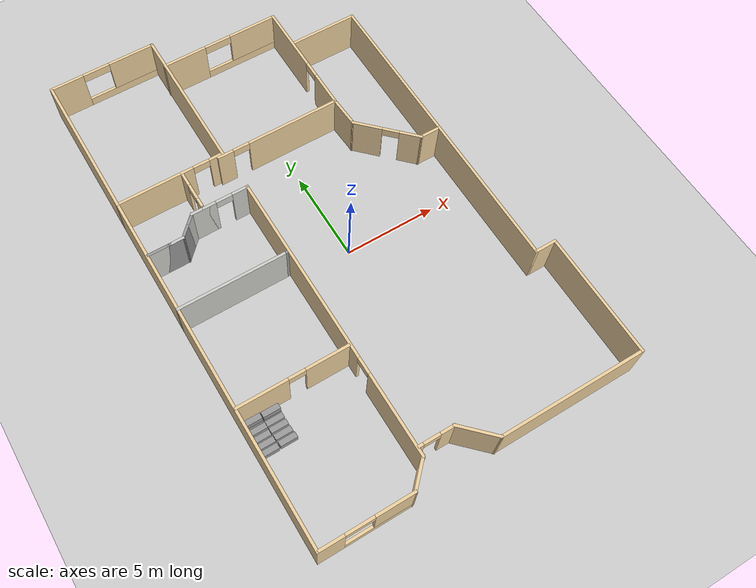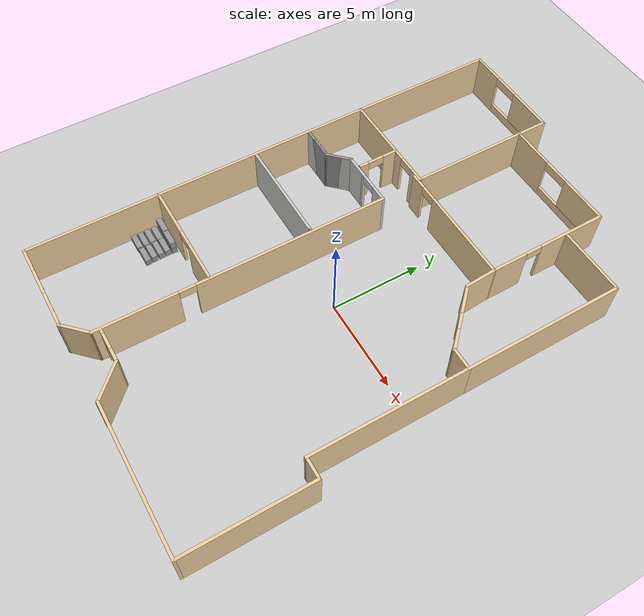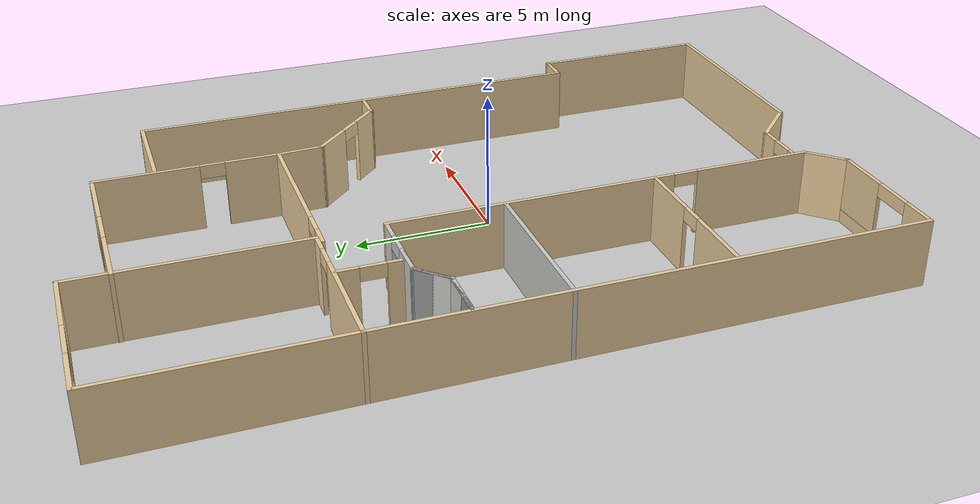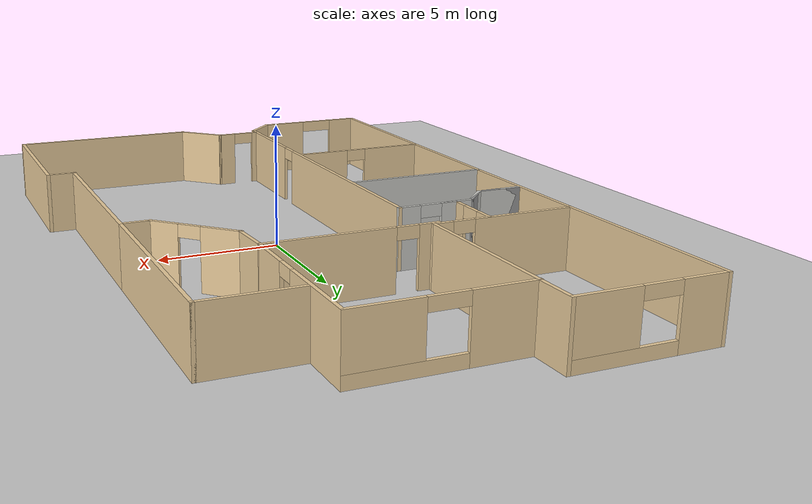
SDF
<sdf version="1.6">
 <world name="default">
  <model name="Fleetwood.sdf">
   <pose>-0.47427 1.4205 0 0 -0 0</pose>
   <link name="Wall_28">
    <pose>-5.70288 13.7405 0 0 -0 0</pose>
    <visual name="Wall_28_Visual_0">
     <pose>-2.06151 0 1.25 0 -0 0</pose>
     <geometry><box><size>1.87698 0.15 2.5</size></box></geometry>
     <material>
      <script><uri>file://media/materials/scripts/gazebo.material</uri><name>Gazebo/Grey</name></script>
      <ambient>0.921569 0.807843 0.615686 1</ambient>
     </material>
     <meta><layer>0</layer></meta>
    </visual>
    <collision name="Wall_28_Collision_0">
     <geometry><box><size>1.87698 0.15 2.5</size></box></geometry>
     <pose>-2.06151 0 1.25 0 -0 0</pose>
    </collision>
    <visual name="Wall_28_Visual_1">
     <pose>0.938493 0 0.25 0 -0 0</pose>
     <geometry><box><size>4.12301 0.15 0.5</size></box></geometry>
     <material>
      <script><uri>file://media/materials/scripts/gazebo.material</uri><name>Gazebo/Grey</name></script>
      <ambient>0.921569 0.807843 0.615686 1</ambient>
     </material>
     <meta><layer>0</layer></meta>
    </visual>
    <collision name="Wall_28_Collision_1">
     <geometry><box><size>4.12301 0.15 0.5</size></box></geometry>
     <pose>0.938493 0 0.25 0 -0 0</pose>
    </collision>
    <visual name="Wall_28_Visual_2">
     <pose>1.68849 0 1.5 0 -0 0</pose>
     <geometry><box><size>2.62302 0.15 2</size></box></geometry>
     <material>
      <script><uri>file://media/materials/scripts/gazebo.material</uri><name>Gazebo/Grey</name></script>
      <ambient>0.921569 0.807843 0.615686 1</ambient>
     </material>
     <meta><layer>0</layer></meta>
    </visual>
    <collision name="Wall_28_Collision_2">
     <geometry><box><size>2.62302 0.15 2</size></box></geometry>
     <pose>1.68849 0 1.5 0 -0 0</pose>
    </collision>
    <visual name="Wall_28_Visual_3">
     <pose>-0.373015 0 2.25 0 -0 0</pose>
     <geometry><box><size>1.5 0.15 0.5</size></box></geometry>
     <material>
      <script><uri>file://media/materials/scripts/gazebo.material</uri><name>Gazebo/Grey</name></script>
      <ambient>0.921569 0.807843 0.615686 1</ambient>
     </material>
     <meta><layer>0</layer></meta>
    </visual>
    <collision name="Wall_28_Collision_3">
     <geometry><box><size>1.5 0.15 0.5</size></box></geometry>
     <pose>-0.373015 0 2.25 0 -0 0</pose>
    </collision>
   </link>
   <link name="Wall_29">
    <collision name="Wall_29_Collision">
     <geometry><box><size>8.25 0.15 2.5</size></box></geometry>
     <pose>0 0 1.25 0 -0 0</pose>
    </collision>
    <visual name="Wall_29_Visual">
     <pose>0 0 1.25 0 -0 0</pose>
     <geometry><box><size>8.25 0.15 2.5</size></box></geometry>
     <material>
      <script><uri>file://media/materials/scripts/gazebo.material</uri><name>Gazebo/Grey</name></script>
      <ambient>0.921569 0.807843 0.615686 1</ambient>
     </material>
     <meta><layer>0</layer></meta>
    </visual>
    <pose>-2.77788 9.69053 0 0 -0 -1.5708</pose>
   </link>
   <link name="Wall_30">
    <pose>-5.70288 5.64053 0 0 -0 3.14159</pose>
    <visual name="Wall_30_Visual_0">
     <pose>-2.5763 0 1.25 0 -0 0</pose>
     <geometry><box><size>0.8474 0.15 2.5</size></box></geometry>
     <material>
      <script><uri>file://media/materials/scripts/gazebo.material</uri><name>Gazebo/Grey</name></script>
      <ambient>0.921569 0.807843 0.615686 1</ambient>
     </material>
     <meta><layer>0</layer></meta>
    </visual>
    <collision name="Wall_30_Collision_0">
     <geometry><box><size>0.8474 0.15 2.5</size></box></geometry>
     <pose>-2.5763 0 1.25 0 -0 0</pose>
    </collision>
    <visual name="Wall_30_Visual_1">
     <pose>0.8737 0 1.25 0 -0 0</pose>
     <geometry><box><size>4.2526 0.15 2.5</size></box></geometry>
     <material>
      <script><uri>file://media/materials/scripts/gazebo.material</uri><name>Gazebo/Grey</name></script>
      <ambient>0.921569 0.807843 0.615686 1</ambient>
     </material>
     <meta><layer>0</layer></meta>
    </visual>
    <collision name="Wall_30_Collision_1">
     <geometry><box><size>4.2526 0.15 2.5</size></box></geometry>
     <pose>0.8737 0 1.25 0 -0 0</pose>
    </collision>
    <visual name="Wall_30_Visual_2">
     <pose>-1.7026 0 2.25 0 -0 0</pose>
     <geometry><box><size>0.9 0.15 0.5</size></box></geometry>
     <material>
      <script><uri>file://media/materials/scripts/gazebo.material</uri><name>Gazebo/Grey</name></script>
      <ambient>0.921569 0.807843 0.615686 1</ambient>
     </material>
     <meta><layer>0</layer></meta>
    </visual>
    <collision name="Wall_30_Collision_2">
     <geometry><box><size>0.9 0.15 0.5</size></box></geometry>
     <pose>-1.7026 0 2.25 0 -0 0</pose>
    </collision>
   </link>
   <link name="Wall_31">
    <collision name="Wall_31_Collision">
     <geometry><box><size>8.25 0.15 2.5</size></box></geometry>
     <pose>0 0 1.25 0 -0 0</pose>
    </collision>
    <visual name="Wall_31_Visual">
     <pose>0 0 1.25 0 -0 0</pose>
     <geometry><box><size>8.25 0.15 2.5</size></box></geometry>
     <material>
      <script><uri>file://media/materials/scripts/gazebo.material</uri><name>Gazebo/Grey</name></script>
      <ambient>0.921569 0.807843 0.615686 1</ambient>
     </material>
     <meta><layer>0</layer></meta>
    </visual>
    <pose>-8.62788 9.69053 0 0 -0 1.5708</pose>
   </link>
   <link name="Wall_33">
    <pose>0.490642 12.1073 0 0 -0 0</pose>
    <visual name="Wall_33_Visual_0">
     <pose>-2.13027 0 1.25 0 -0 0</pose>
     <geometry><box><size>2.48946 0.15 2.5</size></box></geometry>
     <material>
      <script><uri>file://media/materials/scripts/gazebo.material</uri><name>Gazebo/Grey</name></script>
      <ambient>0.921569 0.807843 0.615686 1</ambient>
     </material>
     <meta><layer>0</layer></meta>
    </visual>
    <collision name="Wall_33_Collision_0">
     <geometry><box><size>2.48946 0.15 2.5</size></box></geometry>
     <pose>-2.13027 0 1.25 0 -0 0</pose>
    </collision>
    <visual name="Wall_33_Visual_1">
     <pose>1.24473 0 0.25 0 -0 0</pose>
     <geometry><box><size>4.26054 0.15 0.5</size></box></geometry>
     <material>
      <script><uri>file://media/materials/scripts/gazebo.material</uri><name>Gazebo/Grey</name></script>
      <ambient>0.921569 0.807843 0.615686 1</ambient>
     </material>
     <meta><layer>0</layer></meta>
    </visual>
    <collision name="Wall_33_Collision_1">
     <geometry><box><size>4.26054 0.15 0.5</size></box></geometry>
     <pose>1.24473 0 0.25 0 -0 0</pose>
    </collision>
    <visual name="Wall_33_Visual_2">
     <pose>1.99473 0 1.5 0 -0 0</pose>
     <geometry><box><size>2.76054 0.15 2</size></box></geometry>
     <material>
      <script><uri>file://media/materials/scripts/gazebo.material</uri><name>Gazebo/Grey</name></script>
      <ambient>0.921569 0.807843 0.615686 1</ambient>
     </material>
     <meta><layer>0</layer></meta>
    </visual>
    <collision name="Wall_33_Collision_2">
     <geometry><box><size>2.76054 0.15 2</size></box></geometry>
     <pose>1.99473 0 1.5 0 -0 0</pose>
    </collision>
    <visual name="Wall_33_Visual_3">
     <pose>-0.135539 0 2.25 0 -0 0</pose>
     <geometry><box><size>1.5 0.15 0.5</size></box></geometry>
     <material>
      <script><uri>file://media/materials/scripts/gazebo.material</uri><name>Gazebo/Grey</name></script>
      <ambient>0.921569 0.807843 0.615686 1</ambient>
     </material>
     <meta><layer>0</layer></meta>
    </visual>
    <collision name="Wall_33_Collision_3">
     <geometry><box><size>1.5 0.15 0.5</size></box></geometry>
     <pose>-0.135539 0 2.25 0 -0 0</pose>
    </collision>
   </link>
   <link name="Wall_34">
    <pose>3.79064 8.80726 0 0 -0 -1.5708</pose>
    <visual name="Wall_34_Visual_0">
     <pose>-1.46987 0 1.25 0 -0 0</pose>
     <geometry><box><size>3.81026 0.15 2.5</size></box></geometry>
     <material>
      <script><uri>file://media/materials/scripts/gazebo.material</uri><name>Gazebo/Grey</name></script>
      <ambient>0.921569 0.807843 0.615686 1</ambient>
     </material>
     <meta><layer>0</layer></meta>
    </visual>
    <collision name="Wall_34_Collision_0">
     <geometry><box><size>3.81026 0.15 2.5</size></box></geometry>
     <pose>-1.46987 0 1.25 0 -0 0</pose>
    </collision>
    <visual name="Wall_34_Visual_1">
     <pose>2.35513 0 1.25 0 -0 0</pose>
     <geometry><box><size>2.03974 0.15 2.5</size></box></geometry>
     <material>
      <script><uri>file://media/materials/scripts/gazebo.material</uri><name>Gazebo/Grey</name></script>
      <ambient>0.921569 0.807843 0.615686 1</ambient>
     </material>
     <meta><layer>0</layer></meta>
    </visual>
    <collision name="Wall_34_Collision_1">
     <geometry><box><size>2.03974 0.15 2.5</size></box></geometry>
     <pose>2.35513 0 1.25 0 -0 0</pose>
    </collision>
    <visual name="Wall_34_Visual_2">
     <pose>0.885255 0 2.25 0 -0 0</pose>
     <geometry><box><size>0.9 0.15 0.5</size></box></geometry>
     <material>
      <script><uri>file://media/materials/scripts/gazebo.material</uri><name>Gazebo/Grey</name></script>
      <ambient>0.921569 0.807843 0.615686 1</ambient>
     </material>
     <meta><layer>0</layer></meta>
    </visual>
    <collision name="Wall_34_Collision_2">
     <geometry><box><size>0.9 0.15 0.5</size></box></geometry>
     <pose>0.885255 0 2.25 0 -0 0</pose>
    </collision>
   </link>
   <link name="Wall_35">
    <pose>0.365642 5.50726 0 0 -0 3.14159</pose>
    <visual name="Wall_35_Visual_0">
     <pose>-0.897897 0 1.25 0 -0 0</pose>
     <geometry><box><size>5.20421 0.15 2.5</size></box></geometry>
     <material>
      <script><uri>file://media/materials/scripts/gazebo.material</uri><name>Gazebo/Grey</name></script>
      <ambient>0.921569 0.807843 0.615686 1</ambient>
     </material>
     <meta><layer>0</layer></meta>
    </visual>
    <collision name="Wall_35_Collision_0">
     <geometry><box><size>5.20421 0.15 2.5</size></box></geometry>
     <pose>-0.897897 0 1.25 0 -0 0</pose>
    </collision>
    <visual name="Wall_35_Visual_1">
     <pose>3.0521 0 1.25 0 -0 0</pose>
     <geometry><box><size>0.895794 0.15 2.5</size></box></geometry>
     <material>
      <script><uri>file://media/materials/scripts/gazebo.material</uri><name>Gazebo/Grey</name></script>
      <ambient>0.921569 0.807843 0.615686 1</ambient>
     </material>
     <meta><layer>0</layer></meta>
    </visual>
    <collision name="Wall_35_Collision_1">
     <geometry><box><size>0.895794 0.15 2.5</size></box></geometry>
     <pose>3.0521 0 1.25 0 -0 0</pose>
    </collision>
    <visual name="Wall_35_Visual_2">
     <pose>2.15421 0 2.25 0 -0 0</pose>
     <geometry><box><size>0.9 0.15 0.5</size></box></geometry>
     <material>
      <script><uri>file://media/materials/scripts/gazebo.material</uri><name>Gazebo/Grey</name></script>
      <ambient>0.921569 0.807843 0.615686 1</ambient>
     </material>
     <meta><layer>0</layer></meta>
    </visual>
    <collision name="Wall_35_Collision_2">
     <geometry><box><size>0.9 0.15 0.5</size></box></geometry>
     <pose>2.15421 0 2.25 0 -0 0</pose>
    </collision>
   </link>
   <link name="Wall_37">
    <collision name="Wall_37_Collision">
     <geometry><box><size>3.75 0.15 2.5</size></box></geometry>
     <pose>0 0 1.25 0 -0 0</pose>
    </collision>
    <visual name="Wall_37_Visual">
     <pose>0 0 1.25 0 -0 0</pose>
     <geometry><box><size>3.75 0.15 2.5</size></box></geometry>
     <material>
      <script><uri>file://media/materials/scripts/gazebo.material</uri><name>Gazebo/Grey</name></script>
      <ambient>0.921569 0.807843 0.615686 1</ambient>
     </material>
     <meta><layer>0</layer></meta>
    </visual>
    <pose>5.72788 9.92957 0 0 -0 0</pose>
   </link>
   <link name="Wall_38">
    <collision name="Wall_38_Collision">
     <geometry><box><size>8.75 0.15 2.5</size></box></geometry>
     <pose>0 0 1.25 0 -0 0</pose>
    </collision>
    <visual name="Wall_38_Visual">
     <pose>0 0 1.25 0 -0 0</pose>
     <geometry><box><size>8.75 0.15 2.5</size></box></geometry>
     <material>
      <script><uri>file://media/materials/scripts/gazebo.material</uri><name>Gazebo/Grey</name></script>
      <ambient>0.921569 0.807843 0.615686 1</ambient>
     </material>
     <meta><layer>0</layer></meta>
    </visual>
    <pose>7.52788 5.62957 0 0 -0 -1.5708</pose>
   </link>
   <link name="Wall_39">
    <collision name="Wall_39_Collision">
     <geometry><box><size>1.25 0.15 2.5</size></box></geometry>
     <pose>0 0 1.25 0 -0 0</pose>
    </collision>
    <visual name="Wall_39_Visual">
     <pose>0 0 1.25 0 -0 0</pose>
     <geometry><box><size>1.25 0.15 2.5</size></box></geometry>
     <material>
      <script><uri>file://media/materials/scripts/gazebo.material</uri><name>Gazebo/Grey</name></script>
      <ambient>0.921569 0.807843 0.615686 1</ambient>
     </material>
     <meta><layer>0</layer></meta>
    </visual>
    <pose>6.97788 1.32957 0 0 -0 3.14159</pose>
   </link>
   <link name="Wall_40">
    <pose>5.15509 2.60236 0 0 -0 2.35619</pose>
    <visual name="Wall_40_Visual_0">
     <pose>-1.2659 0 1.25 0 -0 0</pose>
     <geometry><box><size>1.2182 0.15 2.5</size></box></geometry>
     <material>
      <script><uri>file://media/materials/scripts/gazebo.material</uri><name>Gazebo/Grey</name></script>
      <ambient>0.921569 0.807843 0.615686 1</ambient>
     </material>
     <meta><layer>0</layer></meta>
    </visual>
    <collision name="Wall_40_Collision_0">
     <geometry><box><size>1.2182 0.15 2.5</size></box></geometry>
     <pose>-1.2659 0 1.25 0 -0 0</pose>
    </collision>
    <visual name="Wall_40_Visual_1">
     <pose>1.0591 0 1.25 0 -0 0</pose>
     <geometry><box><size>1.6318 0.15 2.5</size></box></geometry>
     <material>
      <script><uri>file://media/materials/scripts/gazebo.material</uri><name>Gazebo/Grey</name></script>
      <ambient>0.921569 0.807843 0.615686 1</ambient>
     </material>
     <meta><layer>0</layer></meta>
    </visual>
    <collision name="Wall_40_Collision_1">
     <geometry><box><size>1.6318 0.15 2.5</size></box></geometry>
     <pose>1.0591 0 1.25 0 -0 0</pose>
    </collision>
    <visual name="Wall_40_Visual_2">
     <pose>-0.206804 0 2.25 0 -0 0</pose>
     <geometry><box><size>0.9 0.15 0.5</size></box></geometry>
     <material>
      <script><uri>file://media/materials/scripts/gazebo.material</uri><name>Gazebo/Grey</name></script>
      <ambient>0.921569 0.807843 0.615686 1</ambient>
     </material>
     <meta><layer>0</layer></meta>
    </visual>
    <collision name="Wall_40_Collision_2">
     <geometry><box><size>0.9 0.15 0.5</size></box></geometry>
     <pose>-0.206804 0 2.25 0 -0 0</pose>
    </collision>
   </link>
   <link name="Wall_41">
    <collision name="Wall_41_Collision">
     <geometry><box><size>1.78468 0.15 2.5</size></box></geometry>
     <pose>0 0 1.25 0 -0 0</pose>
    </collision>
    <visual name="Wall_41_Visual">
     <pose>0 0 1.25 0 -0 0</pose>
     <geometry><box><size>1.78468 0.15 2.5</size></box></geometry>
     <material>
      <script><uri>file://media/materials/scripts/gazebo.material</uri><name>Gazebo/Grey</name></script>
      <ambient>0.921569 0.807843 0.615686 1</ambient>
     </material>
     <meta><layer>0</layer></meta>
    </visual>
    <pose>3.83647 4.69121 0 0 -0 1.62689</pose>
   </link>
   <link name="Wall_43">
    <collision name="Wall_43_Collision">
     <geometry><box><size>19.5 0.15 2.5</size></box></geometry>
     <pose>0 0 1.25 0 -0 0</pose>
    </collision>
    <visual name="Wall_43_Visual">
     <pose>0 0 1.25 0 -0 0</pose>
     <geometry><box><size>19.5 0.15 2.5</size></box></geometry>
     <material>
      <script><uri>file://media/materials/scripts/gazebo.material</uri><name>Gazebo/Grey</name></script>
      <ambient>0.921569 0.807843 0.615686 1</ambient>
     </material>
     <meta><layer>0</layer></meta>
    </visual>
    <pose>-8.62788 -4.03447 0 0 -0 -1.5708</pose>
   </link>
   <link name="Wall_44">
    <pose>-6.20288 -13.7095 0 0 -0 0</pose>
    <visual name="Wall_44_Visual_0">
     <pose>-1.79969 0 1.25 0 -0 0</pose>
     <geometry><box><size>1.40061 0.15 2.5</size></box></geometry>
     <material>
      <script><uri>file://media/materials/scripts/gazebo.material</uri><name>Gazebo/Grey</name></script>
      <ambient>0.921569 0.807843 0.615686 1</ambient>
     </material>
     <meta><layer>0</layer></meta>
    </visual>
    <collision name="Wall_44_Collision_0">
     <geometry><box><size>1.40061 0.15 2.5</size></box></geometry>
     <pose>-1.79969 0 1.25 0 -0 0</pose>
    </collision>
    <visual name="Wall_44_Visual_1">
     <pose>0.700307 0 0.25 0 -0 0</pose>
     <geometry><box><size>3.59938 0.15 0.5</size></box></geometry>
     <material>
      <script><uri>file://media/materials/scripts/gazebo.material</uri><name>Gazebo/Grey</name></script>
      <ambient>0.921569 0.807843 0.615686 1</ambient>
     </material>
     <meta><layer>0</layer></meta>
    </visual>
    <collision name="Wall_44_Collision_1">
     <geometry><box><size>3.59938 0.15 0.5</size></box></geometry>
     <pose>0.700307 0 0.25 0 -0 0</pose>
    </collision>
    <visual name="Wall_44_Visual_2">
     <pose>1.45031 0 1.5 0 -0 0</pose>
     <geometry><box><size>2.09938 0.15 2</size></box></geometry>
     <material>
      <script><uri>file://media/materials/scripts/gazebo.material</uri><name>Gazebo/Grey</name></script>
      <ambient>0.921569 0.807843 0.615686 1</ambient>
     </material>
     <meta><layer>0</layer></meta>
    </visual>
    <collision name="Wall_44_Collision_2">
     <geometry><box><size>2.09938 0.15 2</size></box></geometry>
     <pose>1.45031 0 1.5 0 -0 0</pose>
    </collision>
    <visual name="Wall_44_Visual_3">
     <pose>-0.349385 0 2.25 0 -0 0</pose>
     <geometry><box><size>1.5 0.15 0.5</size></box></geometry>
     <material>
      <script><uri>file://media/materials/scripts/gazebo.material</uri><name>Gazebo/Grey</name></script>
      <ambient>0.921569 0.807843 0.615686 1</ambient>
     </material>
     <meta><layer>0</layer></meta>
    </visual>
    <collision name="Wall_44_Collision_3">
     <geometry><box><size>1.5 0.15 0.5</size></box></geometry>
     <pose>-0.349385 0 2.25 0 -0 0</pose>
    </collision>
   </link>
   <link name="Wall_45">
    <collision name="Wall_45_Collision">
     <geometry><box><size>1.75 0.15 2.5</size></box></geometry>
     <pose>0 0 1.25 0 -0 0</pose>
    </collision>
    <visual name="Wall_45_Visual">
     <pose>0 0 1.25 0 -0 0</pose>
     <geometry><box><size>1.75 0.15 2.5</size></box></geometry>
     <material>
      <script><uri>file://media/materials/scripts/gazebo.material</uri><name>Gazebo/Grey</name></script>
      <ambient>0.921569 0.807843 0.615686 1</ambient>
     </material>
     <meta><layer>0</layer></meta>
    </visual>
    <pose>-3.2122 -13.1438 0 0 -0 0.785398</pose>
   </link>
   <link name="Wall_46">
    <pose>-2.64651 -4.6531 0 0 -0 1.5708</pose>
    <visual name="Wall_46_Visual_0">
     <pose>-5.76354 0 1.25 0 -0 0</pose>
     <geometry><box><size>4.47293 0.15 2.5</size></box></geometry>
     <material>
      <script><uri>file://media/materials/scripts/gazebo.material</uri><name>Gazebo/Grey</name></script>
      <ambient>0.921569 0.807843 0.615686 1</ambient>
     </material>
     <meta><layer>0</layer></meta>
    </visual>
    <collision name="Wall_46_Collision_0">
     <geometry><box><size>4.47293 0.15 2.5</size></box></geometry>
     <pose>-5.76354 0 1.25 0 -0 0</pose>
    </collision>
    <visual name="Wall_46_Visual_1">
     <pose>2.68647 0 1.25 0 -0 0</pose>
     <geometry><box><size>10.6271 0.15 2.5</size></box></geometry>
     <material>
      <script><uri>file://media/materials/scripts/gazebo.material</uri><name>Gazebo/Grey</name></script>
      <ambient>0.921569 0.807843 0.615686 1</ambient>
     </material>
     <meta><layer>0</layer></meta>
    </visual>
    <collision name="Wall_46_Collision_1">
     <geometry><box><size>10.6271 0.15 2.5</size></box></geometry>
     <pose>2.68647 0 1.25 0 -0 0</pose>
    </collision>
    <visual name="Wall_46_Visual_2">
     <pose>-3.07707 0 2.25 0 -0 0</pose>
     <geometry><box><size>0.9 0.15 0.5</size></box></geometry>
     <material>
      <script><uri>file://media/materials/scripts/gazebo.material</uri><name>Gazebo/Grey</name></script>
      <ambient>0.921569 0.807843 0.615686 1</ambient>
     </material>
     <meta><layer>0</layer></meta>
    </visual>
    <collision name="Wall_46_Collision_2">
     <geometry><box><size>0.9 0.15 0.5</size></box></geometry>
     <pose>-3.07707 0 2.25 0 -0 0</pose>
    </collision>
   </link>
   <link name="Wall_47">
    <pose>-4.19651 3.2719 0 0 -0 3.14159</pose>
    <visual name="Wall_47_Visual_0">
     <pose>-1.15263 0 1.25 0 -0 0</pose>
     <geometry><box><size>0.944745 0.15 2.5</size></box></geometry>
     <material>
      <script><uri>file://media/materials/scripts/gazebo.material</uri><name>Gazebo/CeilingTiled</name></script>
      <ambient>1 1 1 1</ambient>
     </material>
     <meta><layer>0</layer></meta>
    </visual>
    <collision name="Wall_47_Collision_0">
     <geometry><box><size>0.944745 0.15 2.5</size></box></geometry>
     <pose>-1.15263 0 1.25 0 -0 0</pose>
    </collision>
    <visual name="Wall_47_Visual_1">
     <pose>0.922373 0 1.25 0 -0 0</pose>
     <geometry><box><size>1.40525 0.15 2.5</size></box></geometry>
     <material>
      <script><uri>file://media/materials/scripts/gazebo.material</uri><name>Gazebo/CeilingTiled</name></script>
      <ambient>1 1 1 1</ambient>
     </material>
     <meta><layer>0</layer></meta>
    </visual>
    <collision name="Wall_47_Collision_1">
     <geometry><box><size>1.40525 0.15 2.5</size></box></geometry>
     <pose>0.922373 0 1.25 0 -0 0</pose>
    </collision>
    <visual name="Wall_47_Visual_2">
     <pose>-0.230255 0 2.25 0 -0 0</pose>
     <geometry><box><size>0.9 0.15 0.5</size></box></geometry>
     <material>
      <script><uri>file://media/materials/scripts/gazebo.material</uri><name>Gazebo/CeilingTiled</name></script>
      <ambient>1 1 1 1</ambient>
     </material>
     <meta><layer>0</layer></meta>
    </visual>
    <collision name="Wall_47_Collision_2">
     <geometry><box><size>0.9 0.15 0.5</size></box></geometry>
     <pose>-0.230255 0 2.25 0 -0 0</pose>
    </collision>
   </link>
   <link name="Wall_48">
    <collision name="Wall_48_Collision">
     <geometry><box><size>1.5 0.15 2.5</size></box></geometry>
     <pose>0 0 1.25 0 -0 0</pose>
    </collision>
    <visual name="Wall_48_Visual">
     <pose>0 0 1.25 0 -0 0</pose>
     <geometry><box><size>1.5 0.15 2.5</size></box></geometry>
     <material>
      <script><uri>file://media/materials/scripts/gazebo.material</uri><name>Gazebo/Grey</name></script>
      <ambient>1 1 1 1</ambient>
     </material>
     <meta><layer>0</layer></meta>
    </visual>
    <pose>-6.22381 2.79461 0 0 -0 -2.35619</pose>
   </link>
   <link name="Wall_49">
    <collision name="Wall_49_Collision">
     <geometry><box><size>2 0.15 2.5</size></box></geometry>
     <pose>0 0 1.25 0 -0 0</pose>
    </collision>
    <visual name="Wall_49_Visual">
     <pose>0 0 1.25 0 -0 0</pose>
     <geometry><box><size>2 0.15 2.5</size></box></geometry>
     <material>
      <script><uri>file://media/materials/scripts/gazebo.material</uri><name>Gazebo/Grey</name></script>
      <ambient>1 1 1 1</ambient>
     </material>
     <meta><layer>0</layer></meta>
    </visual>
    <pose>-7.62611 2.31731 0 0 -0 3.14159</pose>
   </link>
   <link name="Wall_53">
    <pose>-5.08913 4.52418 0 0 -0 -1.5708</pose>
    <visual name="Wall_53_Visual_0">
     <pose>-0.717037 0 1.25 0 -0 0</pose>
     <geometry><box><size>0.815926 0.15 2.5</size></box></geometry>
     <material>
      <script><uri>file://media/materials/scripts/gazebo.material</uri><name>Gazebo/Grey</name></script>
      <ambient>0.921569 0.807843 0.615686 1</ambient>
     </material>
     <meta><layer>0</layer></meta>
    </visual>
    <collision name="Wall_53_Collision_0">
     <geometry><box><size>0.815926 0.15 2.5</size></box></geometry>
     <pose>-0.717037 0 1.25 0 -0 0</pose>
    </collision>
    <visual name="Wall_53_Visual_1">
     <pose>0.857963 0 1.25 0 -0 0</pose>
     <geometry><box><size>0.534074 0.15 2.5</size></box></geometry>
     <material>
      <script><uri>file://media/materials/scripts/gazebo.material</uri><name>Gazebo/Grey</name></script>
      <ambient>0.921569 0.807843 0.615686 1</ambient>
     </material>
     <meta><layer>0</layer></meta>
    </visual>
    <collision name="Wall_53_Collision_1">
     <geometry><box><size>0.534074 0.15 2.5</size></box></geometry>
     <pose>0.857963 0 1.25 0 -0 0</pose>
    </collision>
    <visual name="Wall_53_Visual_2">
     <pose>0.140926 0 2.25 0 -0 0</pose>
     <geometry><box><size>0.9 0.15 0.5</size></box></geometry>
     <material>
      <script><uri>file://media/materials/scripts/gazebo.material</uri><name>Gazebo/Grey</name></script>
      <ambient>0.921569 0.807843 0.615686 1</ambient>
     </material>
     <meta><layer>0</layer></meta>
    </visual>
    <collision name="Wall_53_Collision_2">
     <geometry><box><size>0.9 0.15 0.5</size></box></geometry>
     <pose>0.140926 0 2.25 0 -0 0</pose>
    </collision>
   </link>
   <link name="Wall_55">
    <collision name="Wall_55_Collision">
     <geometry><box><size>2 0.15 2.5</size></box></geometry>
     <pose>0 0 1.25 0 -0 0</pose>
    </collision>
    <visual name="Wall_55_Visual">
     <pose>0 0 1.25 0 -0 0</pose>
     <geometry><box><size>2 0.15 2.5</size></box></geometry>
     <material>
      <script><uri>file://media/materials/scripts/gazebo.material</uri><name>Gazebo/CeilingTiled</name></script>
      <ambient>1 1 1 1</ambient>
     </material>
     <meta><layer>0</layer></meta>
    </visual>
    <pose>-7.62611 2.31731 0 0 -0 0</pose>
   </link>
   <link name="Wall_56">
    <collision name="Wall_56_Collision">
     <geometry><box><size>1.5 0.15 2.5</size></box></geometry>
     <pose>0 0 1.25 0 -0 0</pose>
    </collision>
    <visual name="Wall_56_Visual">
     <pose>0 0 1.25 0 -0 0</pose>
     <geometry><box><size>1.5 0.15 2.5</size></box></geometry>
     <material>
      <script><uri>file://media/materials/scripts/gazebo.material</uri><name>Gazebo/CeilingTiled</name></script>
      <ambient>0.921569 0.807843 0.615686 1</ambient>
     </material>
     <meta><layer>0</layer></meta>
    </visual>
    <pose>-6.22381 2.79461 0 0 -0 0.785398</pose>
   </link>
   <link name="Wall_57">
    <collision name="Wall_57_Collision">
     <geometry><box><size>1.25 0.15 2.5</size></box></geometry>
     <pose>0 0 1.25 0 -0 0</pose>
    </collision>
    <visual name="Wall_57_Visual">
     <pose>0 0 1.25 0 -0 0</pose>
     <geometry><box><size>1.25 0.15 2.5</size></box></geometry>
     <material>
      <script><uri>file://media/materials/scripts/gazebo.material</uri><name>Gazebo/CeilingTiled</name></script>
      <ambient>0.921569 0.807843 0.615686 1</ambient>
     </material>
     <meta><layer>0</layer></meta>
    </visual>
    <pose>-5.19651 3.2719 0 0 -0 0</pose>
   </link>
   <link name="Wall_59">
    <collision name="Wall_59_Collision">
     <geometry><box><size>6 0.15 2.5</size></box></geometry>
     <pose>0 0 1.25 0 -0 0</pose>
    </collision>
    <visual name="Wall_59_Visual">
     <pose>0 0 1.25 0 -0 0</pose>
     <geometry><box><size>6 0.15 2.5</size></box></geometry>
     <material>
      <script><uri>file://media/materials/scripts/gazebo.material</uri><name>Gazebo/CeilingTiled</name></script>
      <ambient>1 1 1 1</ambient>
     </material>
     <meta><layer>0</layer></meta>
    </visual>
    <pose>-5.70288 -0.924873 0 0 -0 0</pose>
   </link>
   <link name="Wall_60">
    <collision name="Wall_60_Collision">
     <geometry><box><size>0.15 0.15 2.5</size></box></geometry>
     <pose>0 0 1.25 0 -0 0</pose>
    </collision>
    <visual name="Wall_60_Visual">
     <pose>0 0 1.25 0 -0 0</pose>
     <geometry><box><size>0.15 0.15 2.5</size></box></geometry>
     <material>
      <script><uri>file://media/materials/scripts/gazebo.material</uri><name>Gazebo/Grey</name></script>
      <ambient>1 1 1 1</ambient>
     </material>
     <meta><layer>0</layer></meta>
    </visual>
    <pose>-2.77788 -0.924873 0 0 -0 0</pose>
   </link>
   <link name="Wall_62">
    <pose>-5.66886 -6.53924 0 0 -0 0</pose>
    <visual name="Wall_62_Visual_0">
     <pose>-1.62228 0 1.25 0 -0 0</pose>
     <geometry><box><size>2.75543 0.15 2.5</size></box></geometry>
     <material>
      <script><uri>file://media/materials/scripts/gazebo.material</uri><name>Gazebo/Grey</name></script>
      <ambient>0.921569 0.807843 0.615686 1</ambient>
     </material>
     <meta><layer>0</layer></meta>
    </visual>
    <collision name="Wall_62_Collision_0">
     <geometry><box><size>2.75543 0.15 2.5</size></box></geometry>
     <pose>-1.62228 0 1.25 0 -0 0</pose>
    </collision>
    <visual name="Wall_62_Visual_1">
     <pose>1.82772 0 1.25 0 -0 0</pose>
     <geometry><box><size>2.34456 0.15 2.5</size></box></geometry>
     <material>
      <script><uri>file://media/materials/scripts/gazebo.material</uri><name>Gazebo/Grey</name></script>
      <ambient>0.921569 0.807843 0.615686 1</ambient>
     </material>
     <meta><layer>0</layer></meta>
    </visual>
    <collision name="Wall_62_Collision_1">
     <geometry><box><size>2.34456 0.15 2.5</size></box></geometry>
     <pose>1.82772 0 1.25 0 -0 0</pose>
    </collision>
    <visual name="Wall_62_Visual_2">
     <pose>0.205435 0 2.25 0 -0 0</pose>
     <geometry><box><size>0.9 0.15 0.5</size></box></geometry>
     <material>
      <script><uri>file://media/materials/scripts/gazebo.material</uri><name>Gazebo/Grey</name></script>
      <ambient>0.921569 0.807843 0.615686 1</ambient>
     </material>
     <meta><layer>0</layer></meta>
    </visual>
    <collision name="Wall_62_Collision_2">
     <geometry><box><size>0.9 0.15 0.5</size></box></geometry>
     <pose>0.205435 0 2.25 0 -0 0</pose>
    </collision>
   </link>
   <link name="Wall_64">
    <collision name="Wall_64_Collision">
     <geometry><box><size>8.5 0.15 2.5</size></box></geometry>
     <pose>0 0 1.25 0 -0 0</pose>
    </collision>
    <visual name="Wall_64_Visual">
     <pose>0 0 1.25 0 -0 0</pose>
     <geometry><box><size>8.5 0.15 2.5</size></box></geometry>
     <material>
      <script><uri>file://media/materials/scripts/gazebo.material</uri><name>Gazebo/Grey</name></script>
      <ambient>0.921569 0.807843 0.615686 1</ambient>
     </material>
     <meta><layer>0</layer></meta>
    </visual>
    <pose>7.52788 -2.84543 0 0 -0 -1.5708</pose>
   </link>
   <link name="Wall_65">
    <collision name="Wall_65_Collision">
     <geometry><box><size>1.25 0.15 2.5</size></box></geometry>
     <pose>0 0 1.25 0 -0 0</pose>
    </collision>
    <visual name="Wall_65_Visual">
     <pose>0 0 1.25 0 -0 0</pose>
     <geometry><box><size>1.25 0.15 2.5</size></box></geometry>
     <material>
      <script><uri>file://media/materials/scripts/gazebo.material</uri><name>Gazebo/Grey</name></script>
      <ambient>0.921569 0.807843 0.615686 1</ambient>
     </material>
     <meta><layer>0</layer></meta>
    </visual>
    <pose>8.07788 -7.02043 0 0 -0 0</pose>
   </link>
   <link name="Wall_66">
    <collision name="Wall_66_Collision">
     <geometry><box><size>6.75 0.15 2.5</size></box></geometry>
     <pose>0 0 1.25 0 -0 0</pose>
    </collision>
    <visual name="Wall_66_Visual">
     <pose>0 0 1.25 0 -0 0</pose>
     <geometry><box><size>6.75 0.15 2.5</size></box></geometry>
     <material>
      <script><uri>file://media/materials/scripts/gazebo.material</uri><name>Gazebo/Grey</name></script>
      <ambient>0.921569 0.807843 0.615686 1</ambient>
     </material>
     <meta><layer>0</layer></meta>
    </visual>
    <pose>8.62788 -10.3204 0 0 -0 -1.5708</pose>
   </link>
   <link name="Wall_67">
    <collision name="Wall_67_Collision">
     <geometry><box><size>8 0.15 2.5</size></box></geometry>
     <pose>0 0 1.25 0 -0 0</pose>
    </collision>
    <visual name="Wall_67_Visual">
     <pose>0 0 1.25 0 -0 0</pose>
     <geometry><box><size>8 0.15 2.5</size></box></geometry>
     <material>
      <script><uri>file://media/materials/scripts/gazebo.material</uri><name>Gazebo/Grey</name></script>
      <ambient>0.921569 0.807843 0.615686 1</ambient>
     </material>
     <meta><layer>0</layer></meta>
    </visual>
    <pose>4.70288 -13.6204 0 0 -0 3.14159</pose>
   </link>
   <link name="Wall_68">
    <collision name="Wall_68_Collision">
     <geometry><box><size>2.25 0.15 2.5</size></box></geometry>
     <pose>0 0 1.25 0 -0 0</pose>
    </collision>
    <visual name="Wall_68_Visual">
     <pose>0 0 1.25 0 -0 0</pose>
     <geometry><box><size>2.25 0.15 2.5</size></box></geometry>
     <material>
      <script><uri>file://media/materials/scripts/gazebo.material</uri><name>Gazebo/Grey</name></script>
      <ambient>0.921569 0.807843 0.615686 1</ambient>
     </material>
     <meta><layer>0</layer></meta>
    </visual>
    <pose>0.03542 -12.878 0 0 -0 2.35619</pose>
   </link>
   <link name="Wall_69">
    <pose>-1.63204 -12.1355 0 0 -0 3.14159</pose>
    <visual name="Wall_69_Visual_0">
     <pose>-0.595699 0 1.25 0 -0 0</pose>
     <geometry><box><size>0.808601 0.15 2.5</size></box></geometry>
     <material>
      <script><uri>file://media/materials/scripts/gazebo.material</uri><name>Gazebo/Grey</name></script>
      <ambient>0.921569 0.807843 0.615686 1</ambient>
     </material>
     <meta><layer>0</layer></meta>
    </visual>
    <collision name="Wall_69_Collision_0">
     <geometry><box><size>0.808601 0.15 2.5</size></box></geometry>
     <pose>-0.595699 0 1.25 0 -0 0</pose>
    </collision>
    <visual name="Wall_69_Visual_1">
     <pose>0.854301 0 1.25 0 -0 0</pose>
     <geometry><box><size>0.291399 0.15 2.5</size></box></geometry>
     <material>
      <script><uri>file://media/materials/scripts/gazebo.material</uri><name>Gazebo/Grey</name></script>
      <ambient>0.921569 0.807843 0.615686 1</ambient>
     </material>
     <meta><layer>0</layer></meta>
    </visual>
    <collision name="Wall_69_Collision_1">
     <geometry><box><size>0.291399 0.15 2.5</size></box></geometry>
     <pose>0.854301 0 1.25 0 -0 0</pose>
    </collision>
    <visual name="Wall_69_Visual_2">
     <pose>0.258601 0 2.25 0 -0 0</pose>
     <geometry><box><size>0.9 0.15 0.5</size></box></geometry>
     <material>
      <script><uri>file://media/materials/scripts/gazebo.material</uri><name>Gazebo/Grey</name></script>
      <ambient>0.921569 0.807843 0.615686 1</ambient>
     </material>
     <meta><layer>0</layer></meta>
    </visual>
    <collision name="Wall_69_Collision_2">
     <geometry><box><size>0.9 0.15 0.5</size></box></geometry>
     <pose>0.258601 0 2.25 0 -0 0</pose>
    </collision>
   </link>
   <static>1</static>
  </model>
  <model name="Box_36x15W_20">
   <link name="Wall">
    <pose>0 0 0.1985 0 -0 0</pose>
    <inertial>
     <mass>5</mass>
     <inertia><ixx>0.1022</ixx><iyy>0.4107</iyy><izz>0.3815</izz><ixy>0</ixy><ixz>0</ixz><iyz>0</iyz></inertia>
    </inertial>
    <collision name="Wall_Collision"><geometry><box><size>0.91 0.296 0.397</size></box></geometry></collision>
    <visual name="Wall_Visual">
     <geometry><box><size>0.91 0.296 0.397</size></box></geometry>
     <material>
      <script><uri>file://media/materials/scripts/gazebo.material</uri><name>Gazebo/Grey</name></script>
      <ambient>1 1 1 1</ambient>
     </material>
    </visual>
   </link>
   <static>1</static>
   <pose>-8.51164 -5.43368 0 0 -0 0</pose>
  </model>
  <model name="Box_36x15W_21">
   <link name="Wall">
    <pose>0 0 0.1985 0 -0 0</pose>
    <inertial>
     <mass>5</mass>
     <inertia><ixx>0.1022</ixx><iyy>0.4107</iyy><izz>0.3815</izz><ixy>0</ixy><ixz>0</ixz><iyz>0</iyz></inertia>
    </inertial>
    <collision name="Wall_Collision"><geometry><box><size>0.91 0.296 0.397</size></box></geometry></collision>
    <visual name="Wall_Visual">
     <geometry><box><size>0.91 0.296 0.397</size></box></geometry>
     <material>
      <script><uri>file://media/materials/scripts/gazebo.material</uri><name>Gazebo/Grey</name></script>
      <ambient>1 1 1 1</ambient>
     </material>
    </visual>
   </link>
   <static>1</static>
   <pose>-7.58093 -5.44777 0 0 -0 0</pose>
  </model>
  <model name="Box_36x15W_22">
   <link name="Wall">
    <pose>0 0 0.1985 0 -0 0</pose>
    <inertial>
     <mass>5</mass>
     <inertia><ixx>0.1022</ixx><iyy>0.4107</iyy><izz>0.3815</izz><ixy>0</ixy><ixz>0</ixz><iyz>0</iyz></inertia>
    </inertial>
    <collision name="Wall_Collision"><geometry><box><size>0.91 0.296 0.397</size></box></geometry></collision>
    <visual name="Wall_Visual">
     <geometry><box><size>0.91 0.296 0.397</size></box></geometry>
     <material>
      <script><uri>file://media/materials/scripts/gazebo.material</uri><name>Gazebo/Grey</name></script>
      <ambient>1 1 1 1</ambient>
     </material>
    </visual>
   </link>
   <static>1</static>
   <pose>-8.51088 -5.83109 0 0 -0 0</pose>
  </model>
  <model name="Box_36x15W_23">
   <link name="Wall">
    <pose>0 0 0.1985 0 -0 0</pose>
    <inertial>
     <mass>5</mass>
     <inertia><ixx>0.1022</ixx><iyy>0.4107</iyy><izz>0.3815</izz><ixy>0</ixy><ixz>0</ixz><iyz>0</iyz></inertia>
    </inertial>
    <collision name="Wall_Collision"><geometry><box><size>0.91 0.296 0.397</size></box></geometry></collision>
    <visual name="Wall_Visual">
     <geometry><box><size>0.91 0.296 0.397</size></box></geometry>
     <material>
      <script><uri>file://media/materials/scripts/gazebo.material</uri><name>Gazebo/Grey</name></script>
      <ambient>1 1 1 1</ambient>
     </material>
    </visual>
   </link>
   <static>1</static>
   <pose>-7.59187 -5.81332 0 0 -0 0</pose>
  </model>
  <model name="Box_36x15W_24">
   <link name="Wall">
    <pose>0 0 0.1985 0 -0 0</pose>
    <inertial>
     <mass>5</mass>
     <inertia><ixx>0.1022</ixx><iyy>0.4107</iyy><izz>0.3815</izz><ixy>0</ixy><ixz>0</ixz><iyz>0</iyz></inertia>
    </inertial>
    <collision name="Wall_Collision"><geometry><box><size>0.91 0.296 0.397</size></box></geometry></collision>
    <visual name="Wall_Visual">
     <geometry><box><size>0.91 0.296 0.397</size></box></geometry>
     <material>
      <script><uri>file://media/materials/scripts/gazebo.material</uri><name>Gazebo/Grey</name></script>
      <ambient>1 1 1 1</ambient>
     </material>
    </visual>
   </link>
   <static>1</static>
   <pose>-8.52518 -6.22684 0 0 -0 0</pose>
  </model>
  <model name="Box_36x15W_25">
   <link name="Wall">
    <pose>0 0 0.1985 0 -0 0</pose>
    <inertial>
     <mass>5</mass>
     <inertia><ixx>0.1022</ixx><iyy>0.4107</iyy><izz>0.3815</izz><ixy>0</ixy><ixz>0</ixz><iyz>0</iyz></inertia>
    </inertial>
    <collision name="Wall_Collision"><geometry><box><size>0.91 0.296 0.397</size></box></geometry></collision>
    <visual name="Wall_Visual">
     <geometry><box><size>0.91 0.296 0.397</size></box></geometry>
     <material>
      <script><uri>file://media/materials/scripts/gazebo.material</uri><name>Gazebo/Grey</name></script>
      <ambient>1 1 1 1</ambient>
     </material>
    </visual>
   </link>
   <static>1</static>
   <pose>-7.58771 -6.1807 0 0 -0 0</pose>
  </model>
  <model name="Box_36x15W_26">
   <link name="Wall">
    <pose>0 0 0.1985 0 -0 0</pose>
    <inertial>
     <mass>5</mass>
     <inertia><ixx>0.1022</ixx><iyy>0.4107</iyy><izz>0.3815</izz><ixy>0</ixy><ixz>0</ixz><iyz>0</iyz></inertia>
    </inertial>
    <collision name="Wall_Collision"><geometry><box><size>0.91 0.296 0.397</size></box></geometry></collision>
    <visual name="Wall_Visual">
     <geometry><box><size>0.91 0.296 0.397</size></box></geometry>
     <material>
      <script><uri>file://media/materials/scripts/gazebo.material</uri><name>Gazebo/Grey</name></script>
      <ambient>1 1 1 1</ambient>
     </material>
    </visual>
   </link>
   <static>1</static>
   <pose>-8.50594 -6.59584 0 0 -0 0</pose>
  </model>
  <model name="Box_36x15W_27">
   <link name="Wall">
    <pose>0 0 0.1985 0 -0 0</pose>
    <inertial>
     <mass>5</mass>
     <inertia><ixx>0.1022</ixx><iyy>0.4107</iyy><izz>0.3815</izz><ixy>0</ixy><ixz>0</ixz><iyz>0</iyz></inertia>
    </inertial>
    <collision name="Wall_Collision"><geometry><box><size>0.91 0.296 0.397</size></box></geometry></collision>
    <visual name="Wall_Visual">
     <geometry><box><size>0.91 0.296 0.397</size></box></geometry>
     <material>
      <script><uri>file://media/materials/scripts/gazebo.material</uri><name>Gazebo/Grey</name></script>
      <ambient>1 1 1 1</ambient>
     </material>
    </visual>
   </link>
   <static>1</static>
   <pose>-7.57018 -6.5648 0 0 -0 0</pose>
  </model>
  <model name="Box_36x15W_28">
   <link name="Wall">
    <pose>0 0 0.1985 0 -0 0</pose>
    <inertial>
     <mass>5</mass>
     <inertia><ixx>0.1022</ixx><iyy>0.4107</iyy><izz>0.3815</izz><ixy>0</ixy><ixz>0</ixz><iyz>0</iyz></inertia>
    </inertial>
    <collision name="Wall_Collision"><geometry><box><size>0.91 0.296 0.397</size></box></geometry></collision>
    <visual name="Wall_Visual">
     <geometry><box><size>0.91 0.296 0.397</size></box></geometry>
     <material>
      <script><uri>file://media/materials/scripts/gazebo.material</uri><name>Gazebo/Grey</name></script>
      <ambient>1 1 1 1</ambient>
     </material>
    </visual>
   </link>
   <static>1</static>
   <pose>-8.51686 -6.96131 0 0 -0 0</pose>
  </model>
  <model name="Box_36x15W_29">
   <link name="Wall">
    <pose>0 0 0.1985 0 -0 0</pose>
    <inertial>
     <mass>5</mass>
     <inertia><ixx>0.1022</ixx><iyy>0.4107</iyy><izz>0.3815</izz><ixy>0</ixy><ixz>0</ixz><iyz>0</iyz></inertia>
    </inertial>
    <collision name="Wall_Collision"><geometry><box><size>0.91 0.296 0.397</size></box></geometry></collision>
    <visual name="Wall_Visual">
     <geometry><box><size>0.91 0.296 0.397</size></box></geometry>
     <material>
      <script><uri>file://media/materials/scripts/gazebo.material</uri><name>Gazebo/Grey</name></script>
      <ambient>1 1 1 1</ambient>
     </material>
    </visual>
   </link>
   <static>1</static>
   <pose>-7.53593 -6.93537 0 0 -0 0</pose>
  </model>
  <model name="Box_36x15W_30">
   <link name="Wall">
    <pose>0 0 0.1985 0 -0 0</pose>
    <inertial>
     <mass>5</mass>
     <inertia><ixx>0.1022</ixx><iyy>0.4107</iyy><izz>0.3815</izz><ixy>0</ixy><ixz>0</ixz><iyz>0</iyz></inertia>
    </inertial>
    <collision name="Wall_Collision"><geometry><box><size>0.91 0.296 0.397</size></box></geometry></collision>
    <visual name="Wall_Visual">
     <geometry><box><size>0.91 0.296 0.397</size></box></geometry>
     <material>
      <script><uri>file://media/materials/scripts/gazebo.material</uri><name>Gazebo/Grey</name></script>
      <ambient>1 1 1 1</ambient>
     </material>
    </visual>
   </link>
   <static>1</static>
   <pose>-8.54016 -5.44466 0.430142 0 -0 0</pose>
  </model>
  <model name="Box_36x15W_31">
   <link name="Wall">
    <pose>0 0 0.1985 0 -0 0</pose>
    <inertial>
     <mass>5</mass>
     <inertia><ixx>0.1022</ixx><iyy>0.4107</iyy><izz>0.3815</izz><ixy>0</ixy><ixz>0</ixz><iyz>0</iyz></inertia>
    </inertial>
    <collision name="Wall_Collision"><geometry><box><size>0.91 0.296 0.397</size></box></geometry></collision>
    <visual name="Wall_Visual">
     <geometry><box><size>0.91 0.296 0.397</size></box></geometry>
     <material>
      <script><uri>file://media/materials/scripts/gazebo.material</uri><name>Gazebo/Grey</name></script>
      <ambient>1 1 1 1</ambient>
     </material>
    </visual>
   </link>
   <static>1</static>
   <pose>-7.58763 -5.47016 0.449359 0 -0 0</pose>
  </model>
  <model name="ground_plane">
   <static>1</static>
   <link name="link">
    <collision name="collision">
     <geometry><plane><normal>0 0 1</normal><size>100 100</size></plane></geometry>
     <surface><friction><ode><mu>100</mu><mu2>50</mu2></ode></friction></surface>
    </collision>
    <visual name="visual">
     <cast_shadows>0</cast_shadows>
     <geometry><plane><normal>0 0 1</normal><size>100 100</size></plane></geometry>
     <material>
      <script><uri>file://media/materials/scripts/gazebo.material</uri><name>Gazebo/Grey</name></script>
     </material>
    </visual>
   </link>
   <pose>0.21962 0.163473 0 0 -0 0</pose>
  </model>
 </world>
</sdf>
